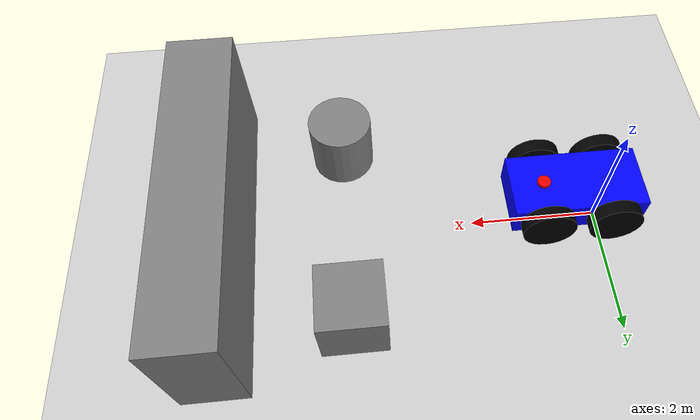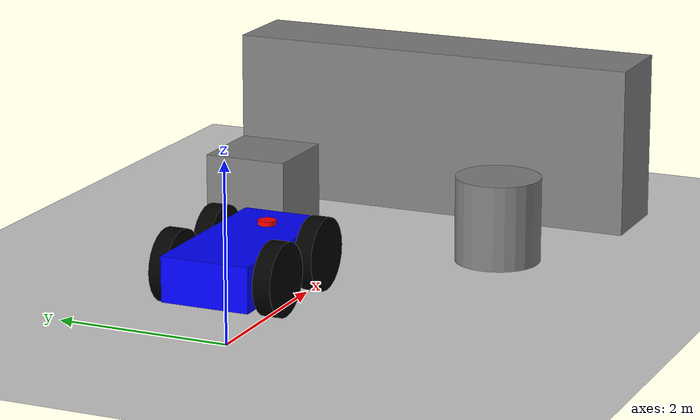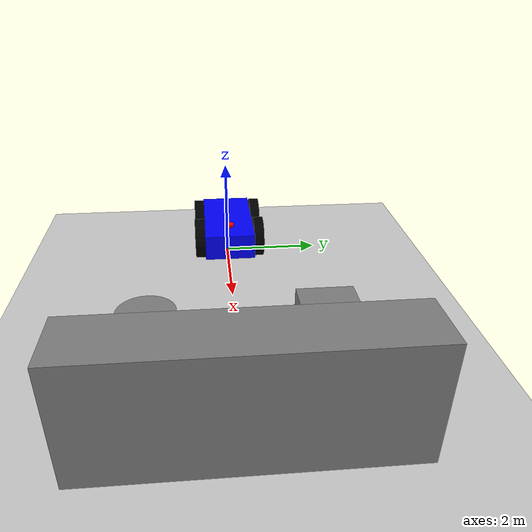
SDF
<?xml version="1.0" ?>
<sdf version="1.10">
    <world name="car_world">
        <physics name="1ms" type="ignored">
            <max_step_size>0.001</max_step_size>
            <real_time_factor>1.0</real_time_factor>
        </physics>
        <plugin
            filename="gz-sim-physics-system"
            name="gz::sim::systems::Physics">
        </plugin>
        <plugin
            filename="gz-sim-user-commands-system"
            name="gz::sim::systems::UserCommands">
        </plugin>
        <plugin
            filename="gz-sim-scene-broadcaster-system"
            name="gz::sim::systems::SceneBroadcaster">
        </plugin>
        <plugin
        filename="gz-sim-sensors-system"
        name="gz::sim::systems::Sensors">
        <render_engine>ogre2</render_engine>
        </plugin>

        <light type="directional" name="sun">
            <cast_shadows>true</cast_shadows>
            <pose>0 0 10 0 0 0</pose>
            <diffuse>0.8 0.8 0.8 1</diffuse>
            <specular>0.2 0.2 0.2 1</specular>
            <attenuation>
                <range>1000</range>
                <constant>0.9</constant>
                <linear>0.01</linear>
                <quadratic>0.001</quadratic>
            </attenuation>
            <direction>-0.5 0.1 -0.9</direction>
        </light>

        <model name="ground_plane">
            <static>true</static>
            <link name="link">
                <collision name="collision">
                <geometry>
                    <plane>
                    <normal>0 0 1</normal>
                    </plane>
                </geometry>
                </collision>
                <visual name="visual">
                <geometry>
                    <plane>
                    <normal>0 0 1</normal>
                    <size>100 100</size>
                    </plane>
                </geometry>
                <material>
                    <ambient>0.8 0.8 0.8 1</ambient>
                    <diffuse>0.8 0.8 0.8 1</diffuse>
                    <specular>0.8 0.8 0.8 1</specular>
                </material>
                </visual>
            </link>
        </model>

        <model name = 'vehicle' canonical_link = 'chassic'>
         <pose relative_to = 'world'> 0 0 0.4 0 0 0 </pose>

         <link name = 'chassic'>

         <pose relative_to = '__model__' > 0.5 0 0.4 0 0 0 </pose>
         <inertial>
         <mass>1.14395</mass>
         <inertia>
            <ixx>0.11916</ixx>
            <ixy>0</ixy>
            <ixz>0</ixz>
            <iyy>0.40515</iyy>
            <iyz>0</iyz>
            <izz>0.47664</izz>
         </inertia>
         </inertial>

        <visual name ='visual'>
         <geometry><box><size>2.0 1.0 0.5</size></box></geometry>

         <material>
         <ambient>0.0 0.0 1.0 1</ambient>
         <diffuse>0.0 0.0 1.0 1</diffuse>
         <specular>0.0 0.0 1.0 1</specular>
         </material>

         </visual>
         <collision name='collision'>
         <geometry><box><size>2.0 1.0 0.5</size></box></geometry>
         </collision>

         </link>
         <link name ='left_wheel1'>
         <pose relative_to = 'chassic'>-0.5 0.6 0 -1.5707 0 0</pose> <inertial>
         <mass>1</mass>
         <inertia>
         <ixx>0.043333</ixx>
         <iyy>0.043333</iyy>
         <izz>0.08</izz>
         </inertia>
         </inertial>

         <visual name = 'visual'>
         <geometry>
            <cylinder>
            <radius>0.4</radius>
            <length>0.2</length>
            </cylinder>
         </geometry>
         <material>
         <ambient>0 0 0 1</ambient>
         <diffuse>0 0 0 1</diffuse>
         <specular>0 0 0 1</specular>
         </material>
         </visual>

         <collision name ='collision'>
         <geometry>
         <cylinder>
            <radius>0.4</radius>
            <length>0.2</length>
         </cylinder>
         </geometry>
         </collision>

         </link>

         <link name ='right_wheel1'>
         <pose relative_to = 'chassic'>-0.5 -0.6 0 -1.5707 0 0</pose> <inertial>
         <mass>1</mass>
         <inertia>
         <ixx>0.043333</ixx>
         <iyy>0.043333</iyy>
         <izz>0.08</izz>
         </inertia>
         </inertial>

         <visual name = 'visual'>
         <geometry>
            <cylinder>
            <radius>0.4</radius>
            <length>0.2</length>
            </cylinder>
         </geometry>
         <material>
         <ambient>0 0 0 1</ambient>
         <diffuse>0 0 0 1</diffuse>
         <specular>0 0 0 1</specular>
         </material>
         </visual>

         <collision name ='collision'>
         <geometry>
         <cylinder>
            <radius>0.4</radius>
            <length>0.2</length>
         </cylinder>
         </geometry>
         </collision>

         </link>

         <link name ='left_wheel2'>
         <pose relative_to = 'chassic'>0.5 0.6 0 -1.5707 0 0</pose>
         <inertial>
         <mass>1</mass>
         <inertia>
         <ixx>0.043333</ixx>
         <iyy>0.043333</iyy>
         <izz>0.08</izz>
         </inertia>
         </inertial>

         <visual name = 'visual'>
         <geometry>
            <cylinder>
            <radius>0.4</radius>
            <length>0.2</length>
            </cylinder>
         </geometry>
         <material>
         <ambient>0 0 0 1</ambient>
         <diffuse>0 0 0 1</diffuse>
         <specular>0 0 0 1</specular>
         </material>
         </visual>

         <collision name ='collision'>
         <geometry>
         <cylinder>
            <radius>0.4</radius>
            <length>0.2</length>
         </cylinder>
         </geometry>
         </collision>

         </link>

         <link name ='right_wheel2'>
         <pose relative_to = 'chassic'>0.5 -0.6 0 -1.5707 0 0</pose> <inertial>
         <mass>1</mass>
         <inertia>
         <ixx>0.043333</ixx>
         <iyy>0.043333</iyy>
         <izz>0.08</izz>
         </inertia>
         </inertial>

         <visual name = 'visual'>
         <geometry>
            <cylinder>
            <radius>0.4</radius>
            <length>0.2</length>
            </cylinder>
         </geometry>
         <material>
         <ambient>0 0 0 1</ambient>
         <diffuse>0 0 0 1</diffuse>
         <specular>0 0 0 1</specular>
         </material>
         </visual>

         <collision name ='collision'>
         <geometry>
         <cylinder>
            <radius>0.4</radius>
            <length>0.2</length>
         </cylinder>
         </geometry>
         </collision>

         </link>

         <link name="lidar_link">
    <pose relative_to='chassic'>0.5 0 0.25 0 0 0</pose>
    <inertial>
        <mass>0.1</mass>
        <inertia>
            <ixx>0.000166</ixx>
            <iyy>0.000166</iyy>
            <izz>0.000166</izz>
        </inertia>
    </inertial>
    <visual name="visual">
        <geometry><cylinder><radius>0.1</radius><length>0.1</length></cylinder></geometry>
        <material>
            <ambient>1 0 0 1</ambient>
            <diffuse>1 0 0 1</diffuse>
            <specular>1 0 0 1</specular>
        </material>
    </visual>
    <sensor name="gpu_lidar" type="gpu_lidar">
        <pose>0 0 0 0 0 0</pose>
        <topic>lidar</topic>
        <update_rate>10</update_rate>
        <ray>
            <scan>
                <horizontal>
                    <samples>640</samples>
                    <resolution>1</resolution>
                    <min_angle>-1.5708</min_angle>
                    <max_angle>1.5708</max_angle>
                </horizontal>
            </scan>
            <range>
                <min>0.1</min>
                <max>10</max>
                <resolution>0.01</resolution>
            </range>
        </ray>
        <always_on>1</always_on>
        <visualize>true</visualize>
    </sensor>
</link>

         <joint name = 'left_wheel1_joint' type = 'revolute'>
            <pose relative_to = 'left_wheel1'/>
            <parent>chassic</parent>
            <child>left_wheel1</child>
                <axis>
                    <xyz>0 0 1</xyz>

                    <limit>
                        <lower>-1.79769e+308</lower>
                        <upper>1.79769e+308</upper>
                    </limit>
                </axis>
         </joint>

         <joint name = 'right_wheel1_joint' type = 'revolute'>
            <pose relative_to = 'right_wheel1'/>
            <parent>chassic</parent>
            <child>right_wheel1</child>
                <axis>
                    <xyz>0 0 1</xyz>

                    <limit>
                        <lower>-1.79769e+308</lower>
                        <upper>1.79769e+308</upper>
                    </limit>
                </axis>
         </joint>

         <joint name = 'left_wheel2_joint' type = 'revolute'>
            <pose relative_to = 'left_wheel2'/>
            <parent>chassic</parent>
            <child>left_wheel2</child>
                <axis>
                    <xyz>0 0 1</xyz>

                    <limit>
                        <lower>-1.79769e+308</lower>
                        <upper>1.79769e+308</upper>
                    </limit>
                </axis>
         </joint>

         <joint name = 'right_wheel2_joint' type = 'revolute'>
            <pose relative_to = 'right_wheel2'/>
            <parent>chassic</parent>
            <child>right_wheel2</child>
                <axis>
                    <xyz>0 0 1</xyz>

                    <limit>
                        <lower>-1.79769e+308</lower>
                        <upper>1.79769e+308</upper>
                    </limit>
                </axis>
         </joint>

        <joint name='lidar_joint' type='fixed'>
            <parent>chassic</parent>
            <child>lidar_link</child>
        </joint>

        <plugin
            filename="gz-sim-diff-drive-system"
            name="gz::sim::systems::DiffDrive">
            <left_joint>left_wheel1_joint</left_joint>
            <left_joint>left_wheel2_joint</left_joint>

            <right_joint>right_wheel1_joint</right_joint>
            <right_joint>right_wheel2_joint</right_joint>

            <wheel_separation>1.2</wheel_separation>
            <wheel_radius>0.4</wheel_radius>

            <topic>cmd_vel</topic>
        </plugin>
         </model>

<model name='gray_box'>
            <pose>4 1.5 0.5 0 0 0</pose>
            <static>true</static>
            <link name='link'>
                <visual name='visual'>
                    <geometry>
                        <box>
                            <size>1 1 1</size>
                        </box>
                    </geometry>
                    <material>
                        <ambient>0.5 0.5 0.5 1</ambient>
                        <diffuse>0.5 0.5 0.5 1</diffuse>
                    </material>
                </visual>
                <collision name='collision'>
                    <geometry>
                        <box>
                            <size>1 1 1</size>
                        </box>
                    </geometry>
                </collision>
            </link>
        </model>

        <model name='gray_cylinder'>
            <pose>4 -1.5 0.5 0 0 0</pose>
            <static>true</static>
            <link name='link'>
                <visual name='visual'>
                    <geometry>
                        <cylinder>
                            <radius>0.5</radius>
                            <length>1</length>
                        </cylinder>
                    </geometry>
                    <material>
                        <ambient>0.5 0.5 0.5 1</ambient>
                        <diffuse>0.5 0.5 0.5 1</diffuse>
                    </material>
                </visual>
                <collision name='collision'>
                    <geometry>
                        <cylinder>
                            <radius>0.5</radius>
                            <length>1</length>
                        </cylinder>
                    </geometry>
                </collision>
            </link>
        </model>

        <model name='gray_wall'>
            <pose>6 0 1 0 0 0</pose>
            <static>true</static>
            <link name='link'>
                <visual name='visual'>
                    <geometry>
                        <box>
                            <size>1 5 2</size>
                        </box>
                    </geometry>
                    <material>
                        <ambient>0.5 0.5 0.5 1</ambient>
                        <diffuse>0.5 0.5 0.5 1</diffuse>
                    </material>
                </visual>
                <collision name='collision'>
                    <geometry>
                        <box>
                            <size>1 5 2</size>
                        </box>
                    </geometry>
                </collision>
            </link>
        </model>

    </world>
</sdf>
